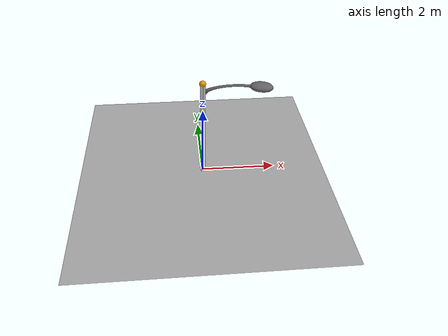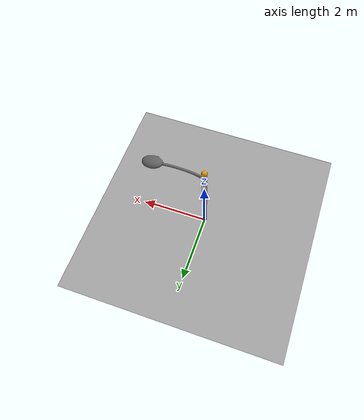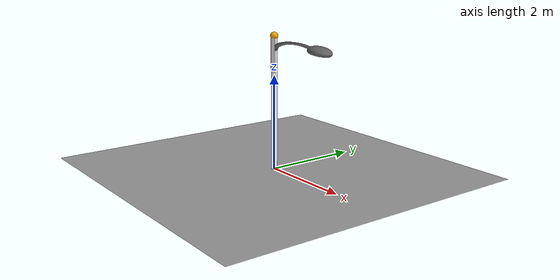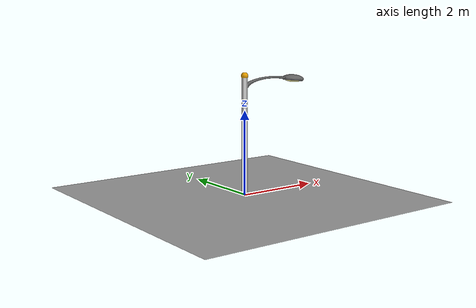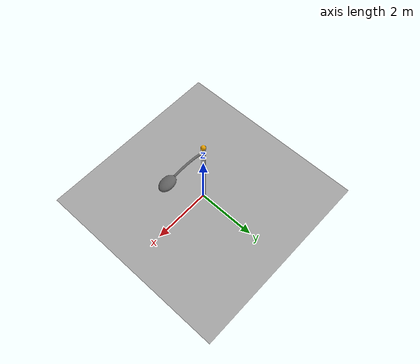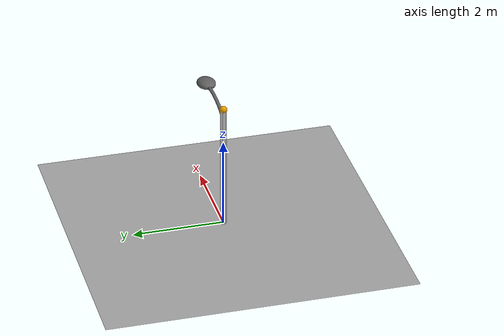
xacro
<?xml version="1.0"?>
<robot name="streetlamp">

    <link name="base_link">
      <visual>
        <origin rpy="0 0 0" xyz="0 0 0"/>
        <geometry>
          <mesh filename="package://aerial_robot_model/urdf/other_objects/street_lamp.dae" scale="0.2 0.2 0.2"/>
        </geometry>
      </visual>
    </link>

</robot>
